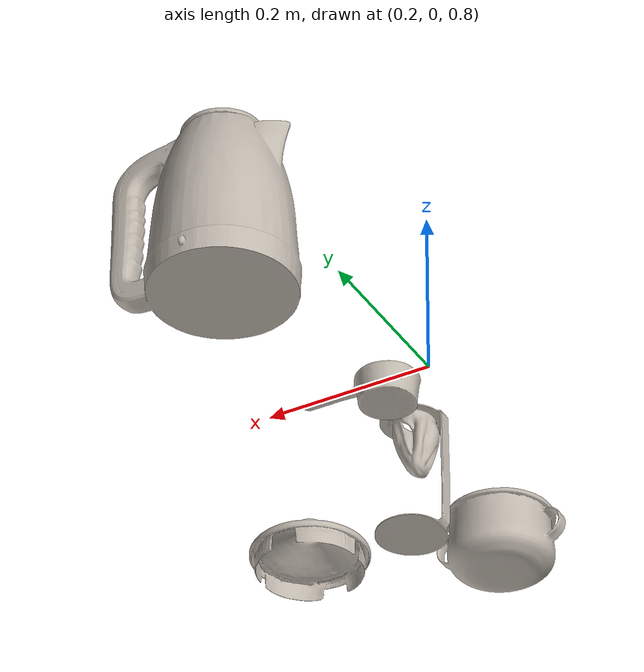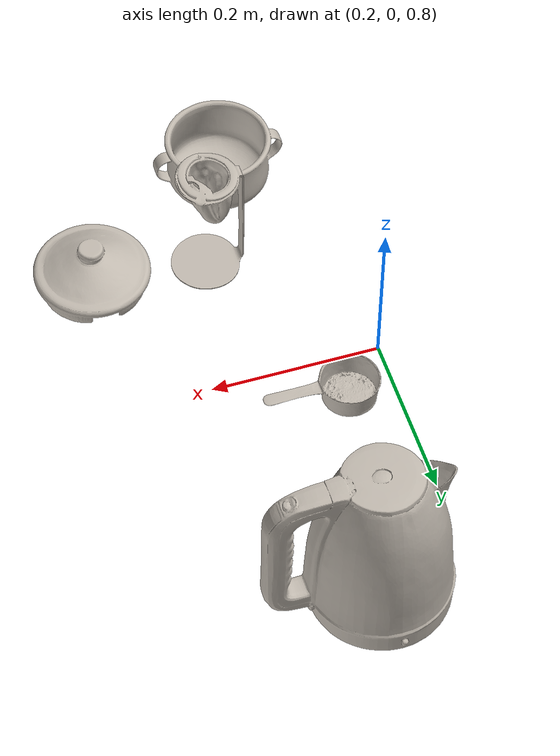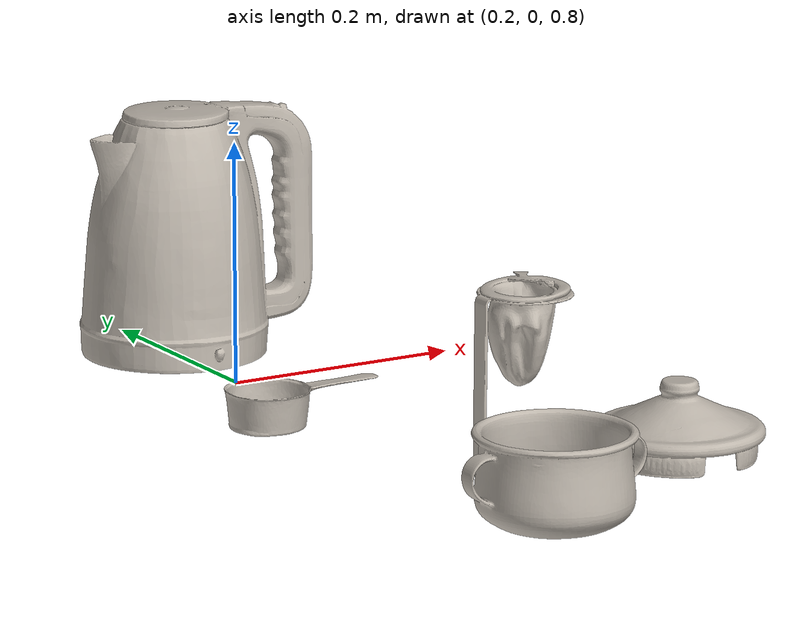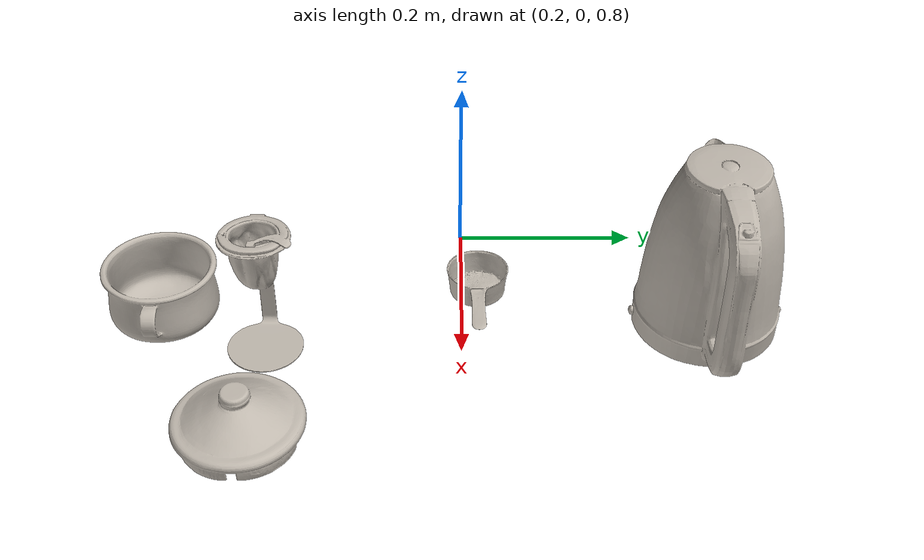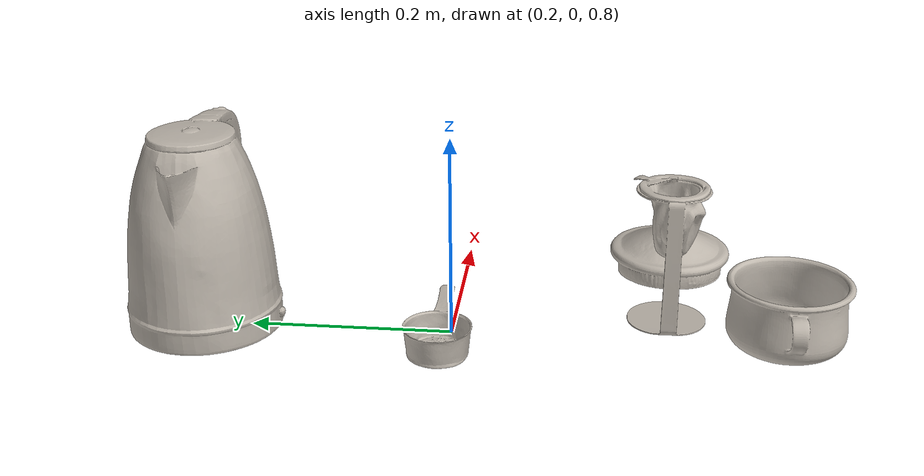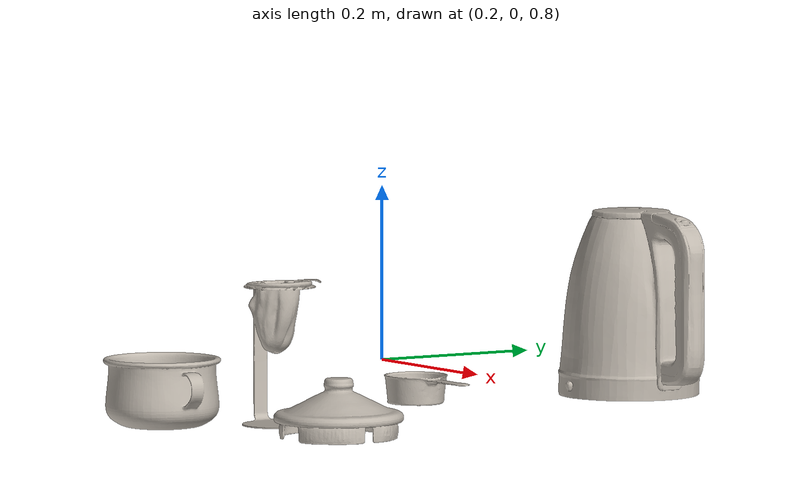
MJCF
<mujoco>
  <!-- Dynamic props: textured visuals + stable approximate box colliders.
       Meshes are in metres, Z up, with their bases at Z=0. -->
  <asset>
    <mesh name="workspace_chaleira" file="coffee_workspace/chaleira.obj"/>
    <mesh name="workspace_coador" file="coffee_workspace/coador.obj"/>
    <mesh name="workspace_pote" file="coffee_workspace/pote.obj"/>
    <mesh name="workspace_tampa" file="coffee_workspace/tampa.obj"/>
    <mesh name="workspace_scoop" file="coffee_workspace/scoop.obj"/>
    <texture name="workspace_chaleira_tex" type="2d" file="meshes/coffee_workspace/chaleira.png"/>
    <texture name="workspace_coador_tex" type="2d" file="meshes/coffee_workspace/coador.png"/>
    <texture name="workspace_pote_tex" type="2d" file="meshes/coffee_workspace/pote.png"/>
    <texture name="workspace_tampa_tex" type="2d" file="meshes/coffee_workspace/tampa.png"/>
    <texture name="workspace_scoop_tex" type="2d" file="meshes/coffee_workspace/scoop.png"/>
    <material name="workspace_chaleira_mat" texture="workspace_chaleira_tex" texuniform="false" specular="0.1" shininess="0.1"/>
    <material name="workspace_coador_mat" texture="workspace_coador_tex" texuniform="false" specular="0.1" shininess="0.1"/>
    <material name="workspace_pote_mat" texture="workspace_pote_tex" texuniform="false" specular="0.1" shininess="0.1"/>
    <material name="workspace_tampa_mat" texture="workspace_tampa_tex" texuniform="false" specular="0.1" shininess="0.1"/>
    <material name="workspace_scoop_mat" texture="workspace_scoop_tex" texuniform="false" specular="0.1" shininess="0.1"/>
  </asset>
  <worldbody>
    <body name="chaleira" pos="0.32 0.28 0.752">
      <joint name="workspace_chaleira_free" type="free" damping="0.01"/>
      <geom name="workspace_chaleira_collision" type="box" size="0.110 0.08757 0.10879" pos="0 0 0.10879"
        rgba="0 0 0 0" group="3" mass="0.6" condim="4"
        friction="1.5 0.01 0.0001" solref="0.01 1" solimp="0.95 0.99 0.001"/>
      <geom name="workspace_chaleira_visual" type="mesh" mesh="workspace_chaleira" material="workspace_chaleira_mat" contype="0" conaffinity="0" mass="0"/>
    </body>
    <body name="coador" pos="0.34 -0.22 0.752">
      <joint name="workspace_coador_free" type="free" damping="0.01"/>
      <geom name="workspace_coador_collision" type="box" size="0.04393 0.04278 0.080" pos="0 0 0.08"
        rgba="0 0 0 0" group="3" mass="0.15" condim="4"
        friction="1.5 0.01 0.0001" solref="0.01 1" solimp="0.95 0.99 0.001"/>
      <geom name="workspace_coador_visual" type="mesh" mesh="workspace_coador" material="workspace_coador_mat" contype="0" conaffinity="0" mass="0"/>
    </body>
    <body name="pote" pos="0.29 -0.34 0.752">
      <joint name="workspace_pote_free" type="free" damping="0.01"/>
      <geom name="workspace_pote_collision" type="box" size="0.080 0.06462 0.03821" pos="0 0 0.03821"
        rgba="0 0 0 0" group="3" mass="0.25" condim="4"
        friction="1.5 0.01 0.0001" solref="0.01 1" solimp="0.95 0.99 0.001"/>
      <geom name="workspace_pote_visual" type="mesh" mesh="workspace_pote" material="workspace_pote_mat" contype="0" conaffinity="0" mass="0"/>
    </body>
    <body name="tampa" pos="0.48 -0.23 0.752">
      <joint name="workspace_tampa_free" type="free" damping="0.01"/>
      <geom name="workspace_tampa_collision" type="box" size="0.06992 0.070 0.03222" pos="0 0 0.03222"
        rgba="0 0 0 0" group="3" mass="0.06" condim="4"
        friction="1.5 0.01 0.0001" solref="0.01 1" solimp="0.95 0.99 0.001"/>
      <geom name="workspace_tampa_visual" type="mesh" mesh="workspace_tampa" material="workspace_tampa_mat" contype="0" conaffinity="0" mass="0"/>
    </body>
    <body name="scoop" pos="0.275 0.02 0.752">
      <joint name="workspace_scoop_free" type="free" damping="0.01"/>
      <geom name="workspace_scoop_collision" type="box" size="0.070 0.03605 0.01643" pos="0 0 0.01643"
        rgba="0 0 0 0" group="3" mass="0.03" condim="4"
        friction="1.5 0.01 0.0001" solref="0.01 1" solimp="0.95 0.99 0.001"/>
      <geom name="workspace_scoop_visual" type="mesh" mesh="workspace_scoop" material="workspace_scoop_mat" contype="0" conaffinity="0" mass="0"/>
    </body>
  </worldbody>
</mujoco>
